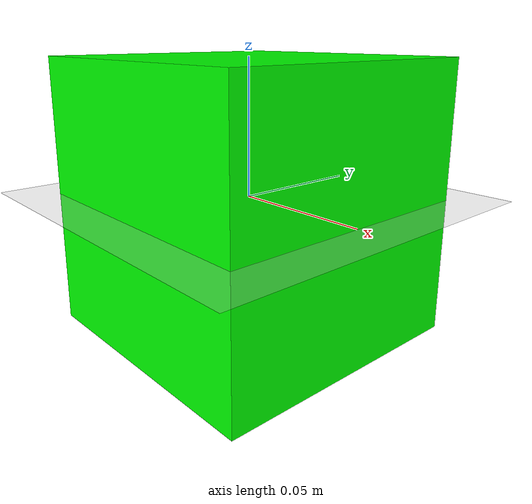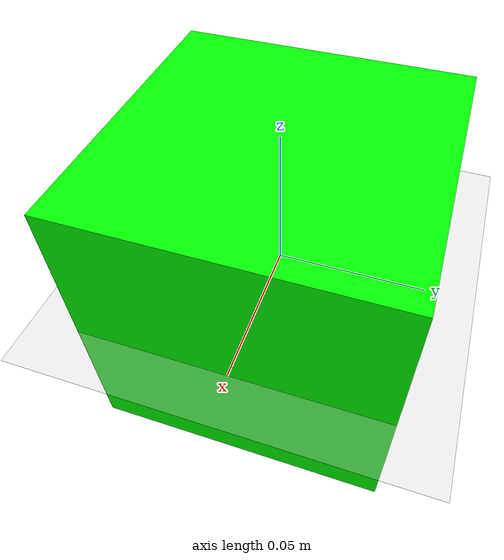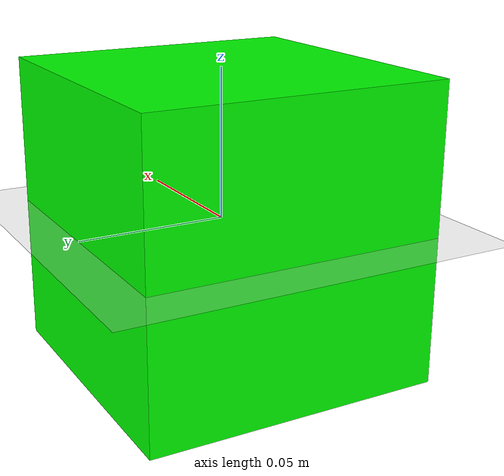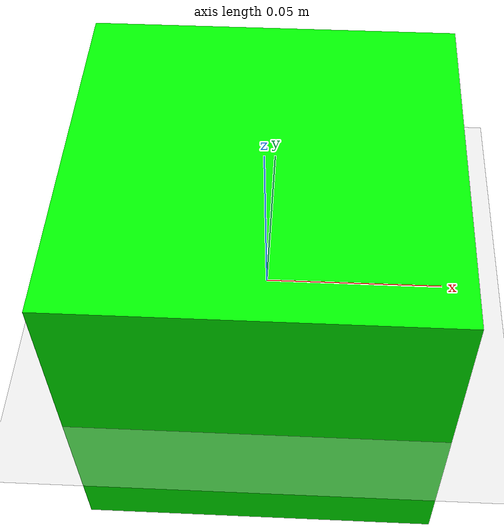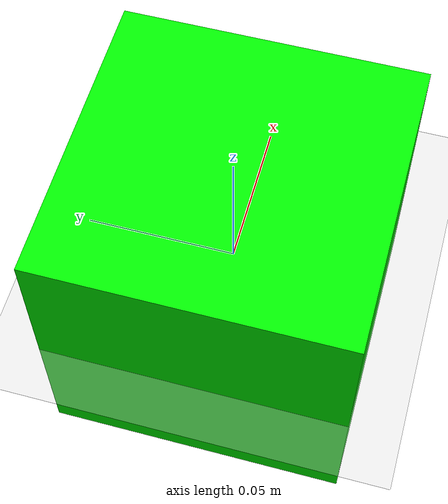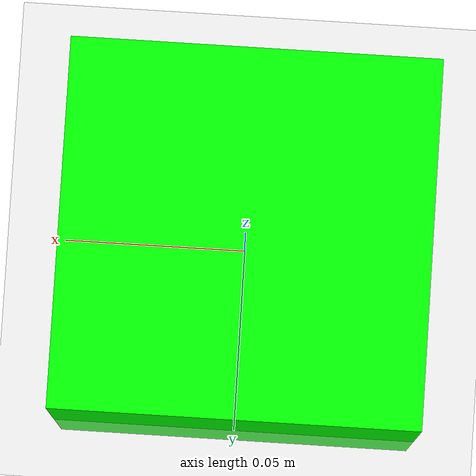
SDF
<sdf version="1.6">
 <world name="default">
  <model name="ground_plane">
   <static>1</static>
   <link name="link">
    <collision name="collision">
     <geometry><plane><normal>0 0 1</normal><size>100 100</size></plane></geometry>
     <surface><friction><ode><mu>100</mu><mu2>50</mu2></ode></friction></surface>
    </collision>
    <visual name="visual">
     <cast_shadows>0</cast_shadows>
     <geometry><plane><normal>0 0 1</normal><size>100 100</size></plane></geometry>
     <material>
      <script><uri>file://media/materials/scripts/gazebo.material</uri><name>Gazebo/Grey</name></script>
     </material>
    </visual>
   </link>
  </model>
  <model name="sr_top_view_camera">
   <static>1</static>
   <link name="link">
    <inertial><mass>0.1</mass></inertial>
    <visual name="visual">
     <material><ambient>0 1 0 1</ambient><diffuse>0 1 0 1</diffuse></material>
     <geometry><box><size>0.1 0.1 0.1</size></box></geometry>
    </visual>
    <collision name="collision"><geometry><box><size>0.1 0.1 0.1</size></box></geometry></collision>
    <sensor name="sr_sensor_top_view_camera" type="camera">
     <always_on>1</always_on>
     <update_rate>24</update_rate>
     <visualize>1</visualize>
     <plugin name="sr_sensor_top_view_camera_plugin" filename="libgazeboCameraPublisher.so"/>
     <camera name="__default__">
      <horizontal_fov>2</horizontal_fov>
      <image><width>800</width><height>600</height></image>
      <clip><near>0.1</near><far>200</far></clip>
      <save enabled="0"><path>/home/DUC/test/save_frame</path></save>
     </camera>
    </sensor>
   </link>
  </model>
 </world>
</sdf>
